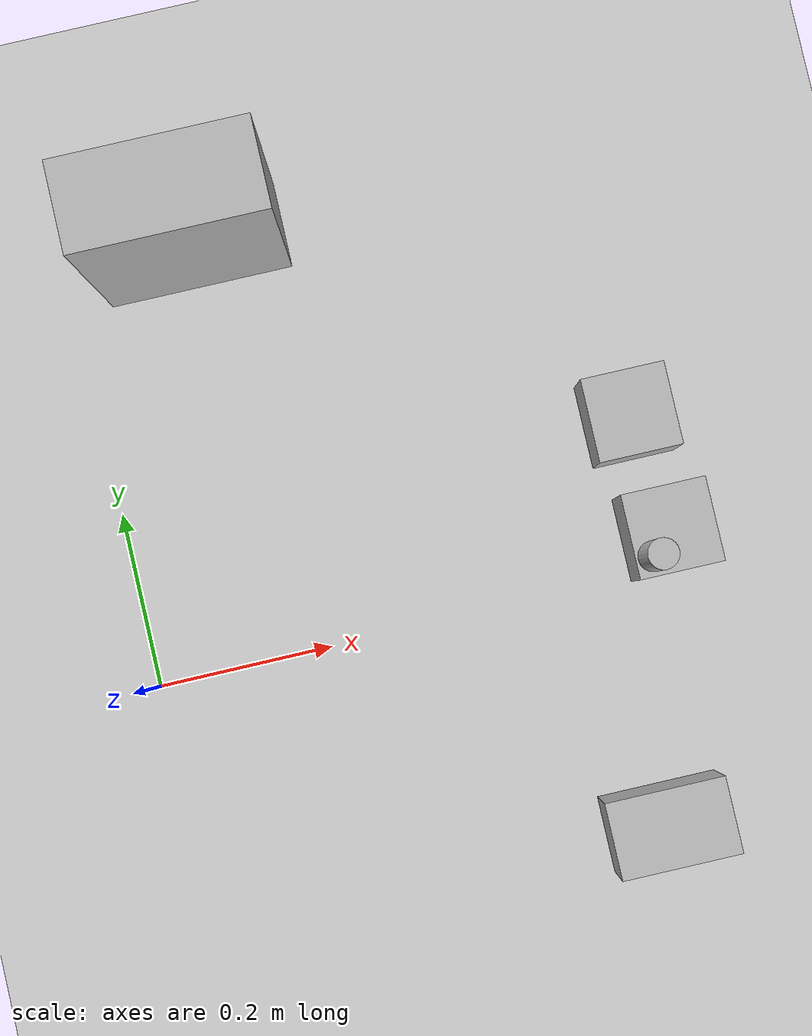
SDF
<?xml version="1.0" ?>
<!-- generated by generate_world_sdf.sh from config/robots.json static_objects -->
<sdf version="1.6">
  <world name="empty">
    <physics name="1ms" type="ignored">
      <max_step_size>0.001</max_step_size>
      <real_time_factor>1.0</real_time_factor>
    </physics>
    <plugin filename="ignition-gazebo-physics-system" name="gz::sim::systems::Physics"/>
    <plugin filename="ignition-gazebo-user-commands-system" name="gz::sim::systems::UserCommands"/>
    <plugin filename="ignition-gazebo-scene-broadcaster-system" name="gz::sim::systems::SceneBroadcaster"/>
    <plugin filename="ignition-gazebo-contact-system" name="gz::sim::systems::Contact"/>

    <light type="directional" name="sun">
      <cast_shadows>true</cast_shadows>
      <pose>0 0 10 0 0 0</pose>
      <diffuse>0.8 0.8 0.8 1</diffuse>
      <specular>0.2 0.2 0.2 1</specular>
      <attenuation>
        <range>1000</range>
        <constant>0.9</constant>
        <linear>0.01</linear>
        <quadratic>0.001</quadratic>
      </attenuation>
      <direction>-0.5 0.1 -0.9</direction>
    </light>

    <model name="ground_plane">
      <static>true</static>
      <link name="link">
        <collision name="collision">
          <geometry><plane><normal>0 0 1</normal><size>100 100</size></plane></geometry>
        </collision>
        <visual name="visual">
          <geometry><plane><normal>0 0 1</normal><size>100 100</size></plane></geometry>
          <material>
            <ambient>0.8 0.8 0.8 1</ambient>
            <diffuse>0.8 0.8 0.8 1</diffuse>
            <specular>0.8 0.8 0.8 1</specular>
          </material>
        </visual>
      </link>
    </model>

    <model name="solution_vial">
      <static>true</static>
      <pose>0.5665 0.018 0.12 0.0 0.0 0.0</pose>
      <link name="link">
        <collision name="collision"><geometry><cylinder><radius>0.017</radius><length>0.12</length></cylinder></geometry></collision>
        <visual name="visual"><geometry><cylinder><radius>0.017</radius><length>0.12</length></cylinder></geometry></visual>
      </link>
    </model>
    <model name="grid">
      <static>true</static>
      <pose>0.5945 0.0433 0.0568 0.0 0.0 0.0</pose>
      <link name="link">
        <collision name="collision"><geometry><box><size>0.095 0.095 0.085</size></box></geometry></collision>
        <visual name="visual"><geometry><box><size>0.095 0.095 0.085</size></box></geometry></visual>
      </link>
    </model>
    <model name="Virtual_Dosing_Station">
      <static>true</static>
      <pose>0.15 0.475 0.19 0.0 0.0 0.0</pose>
      <link name="link">
        <collision name="collision"><geometry><box><size>0.206 0.096 0.285</size></box></geometry></collision>
        <visual name="visual"><geometry><box><size>0.206 0.096 0.285</size></box></geometry></visual>
      </link>
    </model>
    <model name="COM8">
      <static>true</static>
      <pose>0.522 -0.275 0.04725 0.0 0.0 0.0</pose>
      <link name="link">
        <collision name="collision"><geometry><box><size>0.135 0.086 0.077</size></box></geometry></collision>
        <visual name="visual"><geometry><box><size>0.135 0.086 0.077</size></box></geometry></visual>
      </link>
    </model>
    <model name="COM5">
      <static>true</static>
      <pose>0.5837 0.1789 0.0333 0.0 0.0 0.0</pose>
      <link name="link">
        <collision name="collision"><geometry><box><size>0.095 0.095 0.085</size></box></geometry></collision>
        <visual name="visual"><geometry><box><size>0.095 0.095 0.085</size></box></geometry></visual>
      </link>
    </model>
  </world>
</sdf>
